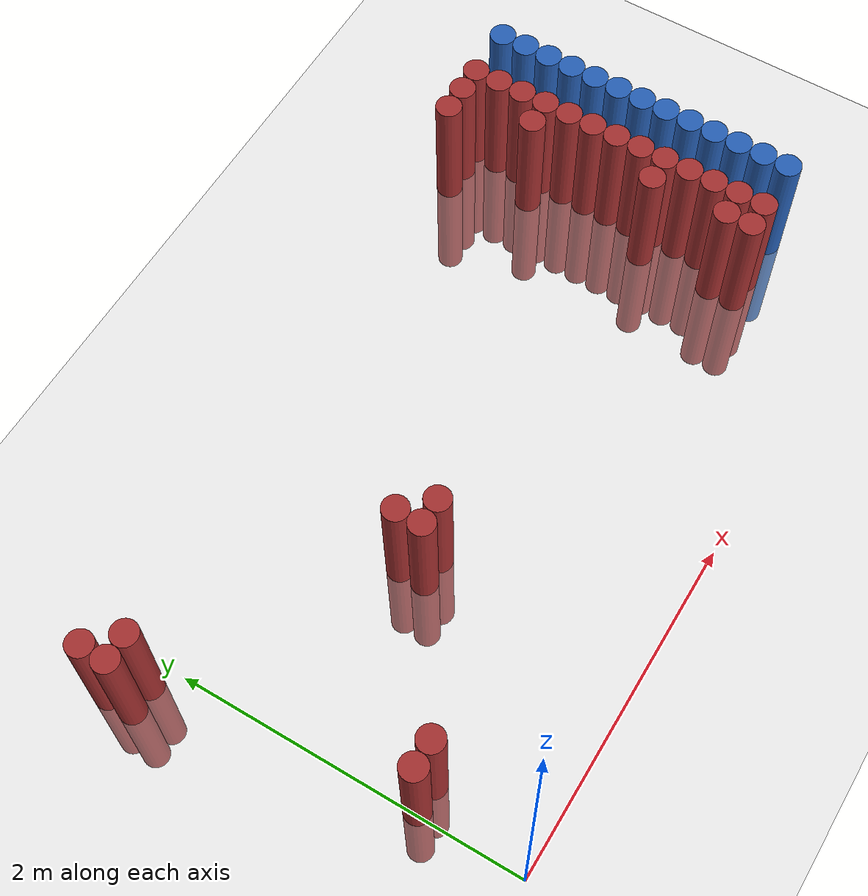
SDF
<sdf version="1.6">
 <world name="default">
  <model name="ground_plane">
   <static>1</static>
   <link name="link">
    <collision name="collision">
     <geometry><plane><normal>0 0 1</normal><size>100 100</size></plane></geometry>
     <surface><friction><ode><mu>100</mu><mu2>50</mu2></ode></friction></surface>
    </collision>
    <visual name="visual">
     <cast_shadows>0</cast_shadows>
     <geometry><plane><normal>0 0 1</normal><size>100 100</size></plane></geometry>
     <material>
      <script><uri>file://media/materials/scripts/gazebo.material</uri><name>Gazebo/Grey</name></script>
     </material>
    </visual>
   </link>
  </model>
  <model name="unit_cylinder_122">
   <static>1</static>
   <pose>3.925000 0.625000 0.000000 0.000000 0.000000 0.000000</pose>
   <link name="link">
    <inertial>
     <mass>1</mass>
     <inertia><ixx>0.145833</ixx><ixy>0</ixy><ixz>0</ixz><iyy>0.145833</iyy><iyz>0</iyz><izz>0.125</izz></inertia>
    </inertial>
    <collision name="collision">
     <geometry><cylinder><radius>0.075000</radius><length>1.5</length></cylinder></geometry>
    </collision>
    <visual name="visual">
     <geometry><cylinder><radius>0.075000</radius><length>1.5</length></cylinder></geometry>
     <material>
      <ambient>0.152000 0.379000 0.720000 1</ambient>
      <diffuse>0.152000 0.379000 0.720000 1</diffuse>
     </material>
     <material>
      <script><name>Gazebo/Grey</name><uri>file://media/materials/scripts/gazebo.material</uri></script>
     </material>
    </visual>
   </link>
  </model>
  <model name="unit_cylinder_124">
   <static>1</static>
   <pose>3.925000 0.775000 0.000000 0.000000 0.000000 0.000000</pose>
   <link name="link">
    <inertial>
     <mass>1</mass>
     <inertia><ixx>0.145833</ixx><ixy>0</ixy><ixz>0</ixz><iyy>0.145833</iyy><iyz>0</iyz><izz>0.125</izz></inertia>
    </inertial>
    <collision name="collision">
     <geometry><cylinder><radius>0.075000</radius><length>1.5</length></cylinder></geometry>
    </collision>
    <visual name="visual">
     <geometry><cylinder><radius>0.075000</radius><length>1.5</length></cylinder></geometry>
     <material>
      <ambient>0.152000 0.379000 0.720000 1</ambient>
      <diffuse>0.152000 0.379000 0.720000 1</diffuse>
     </material>
     <material>
      <script><name>Gazebo/Grey</name><uri>file://media/materials/scripts/gazebo.material</uri></script>
     </material>
    </visual>
   </link>
  </model>
  <model name="unit_cylinder_126">
   <static>1</static>
   <pose>3.925000 0.925000 0.000000 0.000000 0.000000 0.000000</pose>
   <link name="link">
    <inertial>
     <mass>1</mass>
     <inertia><ixx>0.145833</ixx><ixy>0</ixy><ixz>0</ixz><iyy>0.145833</iyy><iyz>0</iyz><izz>0.125</izz></inertia>
    </inertial>
    <collision name="collision">
     <geometry><cylinder><radius>0.075000</radius><length>1.5</length></cylinder></geometry>
    </collision>
    <visual name="visual">
     <geometry><cylinder><radius>0.075000</radius><length>1.5</length></cylinder></geometry>
     <material>
      <ambient>0.152000 0.379000 0.720000 1</ambient>
      <diffuse>0.152000 0.379000 0.720000 1</diffuse>
     </material>
     <material>
      <script><name>Gazebo/Grey</name><uri>file://media/materials/scripts/gazebo.material</uri></script>
     </material>
    </visual>
   </link>
  </model>
  <model name="unit_cylinder_128">
   <static>1</static>
   <pose>3.925000 1.075000 0.000000 0.000000 0.000000 0.000000</pose>
   <link name="link">
    <inertial>
     <mass>1</mass>
     <inertia><ixx>0.145833</ixx><ixy>0</ixy><ixz>0</ixz><iyy>0.145833</iyy><iyz>0</iyz><izz>0.125</izz></inertia>
    </inertial>
    <collision name="collision">
     <geometry><cylinder><radius>0.075000</radius><length>1.5</length></cylinder></geometry>
    </collision>
    <visual name="visual">
     <geometry><cylinder><radius>0.075000</radius><length>1.5</length></cylinder></geometry>
     <material>
      <ambient>0.152000 0.379000 0.720000 1</ambient>
      <diffuse>0.152000 0.379000 0.720000 1</diffuse>
     </material>
     <material>
      <script><name>Gazebo/Grey</name><uri>file://media/materials/scripts/gazebo.material</uri></script>
     </material>
    </visual>
   </link>
  </model>
  <model name="unit_cylinder_130">
   <static>1</static>
   <pose>3.925000 1.225000 0.000000 0.000000 0.000000 0.000000</pose>
   <link name="link">
    <inertial>
     <mass>1</mass>
     <inertia><ixx>0.145833</ixx><ixy>0</ixy><ixz>0</ixz><iyy>0.145833</iyy><iyz>0</iyz><izz>0.125</izz></inertia>
    </inertial>
    <collision name="collision">
     <geometry><cylinder><radius>0.075000</radius><length>1.5</length></cylinder></geometry>
    </collision>
    <visual name="visual">
     <geometry><cylinder><radius>0.075000</radius><length>1.5</length></cylinder></geometry>
     <material>
      <ambient>0.152000 0.379000 0.720000 1</ambient>
      <diffuse>0.152000 0.379000 0.720000 1</diffuse>
     </material>
     <material>
      <script><name>Gazebo/Grey</name><uri>file://media/materials/scripts/gazebo.material</uri></script>
     </material>
    </visual>
   </link>
  </model>
  <model name="unit_cylinder_132">
   <static>1</static>
   <pose>3.925000 1.375000 0.000000 0.000000 0.000000 0.000000</pose>
   <link name="link">
    <inertial>
     <mass>1</mass>
     <inertia><ixx>0.145833</ixx><ixy>0</ixy><ixz>0</ixz><iyy>0.145833</iyy><iyz>0</iyz><izz>0.125</izz></inertia>
    </inertial>
    <collision name="collision">
     <geometry><cylinder><radius>0.075000</radius><length>1.5</length></cylinder></geometry>
    </collision>
    <visual name="visual">
     <geometry><cylinder><radius>0.075000</radius><length>1.5</length></cylinder></geometry>
     <material>
      <ambient>0.152000 0.379000 0.720000 1</ambient>
      <diffuse>0.152000 0.379000 0.720000 1</diffuse>
     </material>
     <material>
      <script><name>Gazebo/Grey</name><uri>file://media/materials/scripts/gazebo.material</uri></script>
     </material>
    </visual>
   </link>
  </model>
  <model name="unit_cylinder_134">
   <static>1</static>
   <pose>3.925000 1.525000 0.000000 0.000000 0.000000 0.000000</pose>
   <link name="link">
    <inertial>
     <mass>1</mass>
     <inertia><ixx>0.145833</ixx><ixy>0</ixy><ixz>0</ixz><iyy>0.145833</iyy><iyz>0</iyz><izz>0.125</izz></inertia>
    </inertial>
    <collision name="collision">
     <geometry><cylinder><radius>0.075000</radius><length>1.5</length></cylinder></geometry>
    </collision>
    <visual name="visual">
     <geometry><cylinder><radius>0.075000</radius><length>1.5</length></cylinder></geometry>
     <material>
      <ambient>0.152000 0.379000 0.720000 1</ambient>
      <diffuse>0.152000 0.379000 0.720000 1</diffuse>
     </material>
     <material>
      <script><name>Gazebo/Grey</name><uri>file://media/materials/scripts/gazebo.material</uri></script>
     </material>
    </visual>
   </link>
  </model>
  <model name="unit_cylinder_136">
   <static>1</static>
   <pose>3.925000 1.675000 0.000000 0.000000 0.000000 0.000000</pose>
   <link name="link">
    <inertial>
     <mass>1</mass>
     <inertia><ixx>0.145833</ixx><ixy>0</ixy><ixz>0</ixz><iyy>0.145833</iyy><iyz>0</iyz><izz>0.125</izz></inertia>
    </inertial>
    <collision name="collision">
     <geometry><cylinder><radius>0.075000</radius><length>1.5</length></cylinder></geometry>
    </collision>
    <visual name="visual">
     <geometry><cylinder><radius>0.075000</radius><length>1.5</length></cylinder></geometry>
     <material>
      <ambient>0.152000 0.379000 0.720000 1</ambient>
      <diffuse>0.152000 0.379000 0.720000 1</diffuse>
     </material>
     <material>
      <script><name>Gazebo/Grey</name><uri>file://media/materials/scripts/gazebo.material</uri></script>
     </material>
    </visual>
   </link>
  </model>
  <model name="unit_cylinder_138">
   <static>1</static>
   <pose>3.925000 1.825000 0.000000 0.000000 0.000000 0.000000</pose>
   <link name="link">
    <inertial>
     <mass>1</mass>
     <inertia><ixx>0.145833</ixx><ixy>0</ixy><ixz>0</ixz><iyy>0.145833</iyy><iyz>0</iyz><izz>0.125</izz></inertia>
    </inertial>
    <collision name="collision">
     <geometry><cylinder><radius>0.075000</radius><length>1.5</length></cylinder></geometry>
    </collision>
    <visual name="visual">
     <geometry><cylinder><radius>0.075000</radius><length>1.5</length></cylinder></geometry>
     <material>
      <ambient>0.152000 0.379000 0.720000 1</ambient>
      <diffuse>0.152000 0.379000 0.720000 1</diffuse>
     </material>
     <material>
      <script><name>Gazebo/Grey</name><uri>file://media/materials/scripts/gazebo.material</uri></script>
     </material>
    </visual>
   </link>
  </model>
  <model name="unit_cylinder_140">
   <static>1</static>
   <pose>3.925000 1.975000 0.000000 0.000000 0.000000 0.000000</pose>
   <link name="link">
    <inertial>
     <mass>1</mass>
     <inertia><ixx>0.145833</ixx><ixy>0</ixy><ixz>0</ixz><iyy>0.145833</iyy><iyz>0</iyz><izz>0.125</izz></inertia>
    </inertial>
    <collision name="collision">
     <geometry><cylinder><radius>0.075000</radius><length>1.5</length></cylinder></geometry>
    </collision>
    <visual name="visual">
     <geometry><cylinder><radius>0.075000</radius><length>1.5</length></cylinder></geometry>
     <material>
      <ambient>0.152000 0.379000 0.720000 1</ambient>
      <diffuse>0.152000 0.379000 0.720000 1</diffuse>
     </material>
     <material>
      <script><name>Gazebo/Grey</name><uri>file://media/materials/scripts/gazebo.material</uri></script>
     </material>
    </visual>
   </link>
  </model>
  <model name="unit_cylinder_142">
   <static>1</static>
   <pose>3.925000 2.125000 0.000000 0.000000 0.000000 0.000000</pose>
   <link name="link">
    <inertial>
     <mass>1</mass>
     <inertia><ixx>0.145833</ixx><ixy>0</ixy><ixz>0</ixz><iyy>0.145833</iyy><iyz>0</iyz><izz>0.125</izz></inertia>
    </inertial>
    <collision name="collision">
     <geometry><cylinder><radius>0.075000</radius><length>1.5</length></cylinder></geometry>
    </collision>
    <visual name="visual">
     <geometry><cylinder><radius>0.075000</radius><length>1.5</length></cylinder></geometry>
     <material>
      <ambient>0.152000 0.379000 0.720000 1</ambient>
      <diffuse>0.152000 0.379000 0.720000 1</diffuse>
     </material>
     <material>
      <script><name>Gazebo/Grey</name><uri>file://media/materials/scripts/gazebo.material</uri></script>
     </material>
    </visual>
   </link>
  </model>
  <model name="unit_cylinder_144">
   <static>1</static>
   <pose>3.925000 2.275000 0.000000 0.000000 0.000000 0.000000</pose>
   <link name="link">
    <inertial>
     <mass>1</mass>
     <inertia><ixx>0.145833</ixx><ixy>0</ixy><ixz>0</ixz><iyy>0.145833</iyy><iyz>0</iyz><izz>0.125</izz></inertia>
    </inertial>
    <collision name="collision">
     <geometry><cylinder><radius>0.075000</radius><length>1.5</length></cylinder></geometry>
    </collision>
    <visual name="visual">
     <geometry><cylinder><radius>0.075000</radius><length>1.5</length></cylinder></geometry>
     <material>
      <ambient>0.152000 0.379000 0.720000 1</ambient>
      <diffuse>0.152000 0.379000 0.720000 1</diffuse>
     </material>
     <material>
      <script><name>Gazebo/Grey</name><uri>file://media/materials/scripts/gazebo.material</uri></script>
     </material>
    </visual>
   </link>
  </model>
  <model name="unit_cylinder_146">
   <static>1</static>
   <pose>3.925000 2.425000 0.000000 0.000000 0.000000 0.000000</pose>
   <link name="link">
    <inertial>
     <mass>1</mass>
     <inertia><ixx>0.145833</ixx><ixy>0</ixy><ixz>0</ixz><iyy>0.145833</iyy><iyz>0</iyz><izz>0.125</izz></inertia>
    </inertial>
    <collision name="collision">
     <geometry><cylinder><radius>0.075000</radius><length>1.5</length></cylinder></geometry>
    </collision>
    <visual name="visual">
     <geometry><cylinder><radius>0.075000</radius><length>1.5</length></cylinder></geometry>
     <material>
      <ambient>0.152000 0.379000 0.720000 1</ambient>
      <diffuse>0.152000 0.379000 0.720000 1</diffuse>
     </material>
     <material>
      <script><name>Gazebo/Grey</name><uri>file://media/materials/scripts/gazebo.material</uri></script>
     </material>
    </visual>
   </link>
  </model>
  <model name="unit_cylinder_403">
   <static>1</static>
   <pose>-0.275000 2.125000 0.000000 0.000000 0.000000 0.000000</pose>
   <link name="link">
    <inertial>
     <mass>1</mass>
     <inertia><ixx>0.145833</ixx><ixy>0</ixy><ixz>0</ixz><iyy>0.145833</iyy><iyz>0</iyz><izz>0.125</izz></inertia>
    </inertial>
    <collision name="collision">
     <geometry><cylinder><radius>0.075000</radius><length>1.5</length></cylinder></geometry>
    </collision>
    <visual name="visual">
     <geometry><cylinder><radius>0.075000</radius><length>1.5</length></cylinder></geometry>
     <material>
      <ambient>0.648000 0.192000 0.192000 1</ambient>
      <diffuse>0.648000 0.192000 0.192000 1</diffuse>
     </material>
     <material>
      <script><name>Gazebo/Grey</name><uri>file://media/materials/scripts/gazebo.material</uri></script>
     </material>
    </visual>
   </link>
  </model>
  <model name="unit_cylinder_404">
   <static>1</static>
   <pose>-0.275000 2.275000 0.000000 0.000000 0.000000 0.000000</pose>
   <link name="link">
    <inertial>
     <mass>1</mass>
     <inertia><ixx>0.145833</ixx><ixy>0</ixy><ixz>0</ixz><iyy>0.145833</iyy><iyz>0</iyz><izz>0.125</izz></inertia>
    </inertial>
    <collision name="collision">
     <geometry><cylinder><radius>0.075000</radius><length>1.5</length></cylinder></geometry>
    </collision>
    <visual name="visual">
     <geometry><cylinder><radius>0.075000</radius><length>1.5</length></cylinder></geometry>
     <material>
      <ambient>0.648000 0.192000 0.192000 1</ambient>
      <diffuse>0.648000 0.192000 0.192000 1</diffuse>
     </material>
     <material>
      <script><name>Gazebo/Grey</name><uri>file://media/materials/scripts/gazebo.material</uri></script>
     </material>
    </visual>
   </link>
  </model>
  <model name="unit_cylinder_407">
   <static>1</static>
   <pose>-0.125000 2.125000 0.000000 0.000000 0.000000 0.000000</pose>
   <link name="link">
    <inertial>
     <mass>1</mass>
     <inertia><ixx>0.145833</ixx><ixy>0</ixy><ixz>0</ixz><iyy>0.145833</iyy><iyz>0</iyz><izz>0.125</izz></inertia>
    </inertial>
    <collision name="collision">
     <geometry><cylinder><radius>0.075000</radius><length>1.5</length></cylinder></geometry>
    </collision>
    <visual name="visual">
     <geometry><cylinder><radius>0.075000</radius><length>1.5</length></cylinder></geometry>
     <material>
      <ambient>0.648000 0.192000 0.192000 1</ambient>
      <diffuse>0.648000 0.192000 0.192000 1</diffuse>
     </material>
     <material>
      <script><name>Gazebo/Grey</name><uri>file://media/materials/scripts/gazebo.material</uri></script>
     </material>
    </visual>
   </link>
  </model>
  <model name="unit_cylinder_409">
   <static>1</static>
   <pose>0.025000 0.625000 0.000000 0.000000 0.000000 0.000000</pose>
   <link name="link">
    <inertial>
     <mass>1</mass>
     <inertia><ixx>0.145833</ixx><ixy>0</ixy><ixz>0</ixz><iyy>0.145833</iyy><iyz>0</iyz><izz>0.125</izz></inertia>
    </inertial>
    <collision name="collision">
     <geometry><cylinder><radius>0.075000</radius><length>1.5</length></cylinder></geometry>
    </collision>
    <visual name="visual">
     <geometry><cylinder><radius>0.075000</radius><length>1.5</length></cylinder></geometry>
     <material>
      <ambient>0.648000 0.192000 0.192000 1</ambient>
      <diffuse>0.648000 0.192000 0.192000 1</diffuse>
     </material>
     <material>
      <script><name>Gazebo/Grey</name><uri>file://media/materials/scripts/gazebo.material</uri></script>
     </material>
    </visual>
   </link>
  </model>
  <model name="unit_cylinder_412">
   <static>1</static>
   <pose>0.175000 0.625000 0.000000 0.000000 0.000000 0.000000</pose>
   <link name="link">
    <inertial>
     <mass>1</mass>
     <inertia><ixx>0.145833</ixx><ixy>0</ixy><ixz>0</ixz><iyy>0.145833</iyy><iyz>0</iyz><izz>0.125</izz></inertia>
    </inertial>
    <collision name="collision">
     <geometry><cylinder><radius>0.075000</radius><length>1.5</length></cylinder></geometry>
    </collision>
    <visual name="visual">
     <geometry><cylinder><radius>0.075000</radius><length>1.5</length></cylinder></geometry>
     <material>
      <ambient>0.648000 0.192000 0.192000 1</ambient>
      <diffuse>0.648000 0.192000 0.192000 1</diffuse>
     </material>
     <material>
      <script><name>Gazebo/Grey</name><uri>file://media/materials/scripts/gazebo.material</uri></script>
     </material>
    </visual>
   </link>
  </model>
  <model name="unit_cylinder_421">
   <static>1</static>
   <pose>1.075000 1.225000 0.000000 0.000000 0.000000 0.000000</pose>
   <link name="link">
    <inertial>
     <mass>1</mass>
     <inertia><ixx>0.145833</ixx><ixy>0</ixy><ixz>0</ixz><iyy>0.145833</iyy><iyz>0</iyz><izz>0.125</izz></inertia>
    </inertial>
    <collision name="collision">
     <geometry><cylinder><radius>0.075000</radius><length>1.5</length></cylinder></geometry>
    </collision>
    <visual name="visual">
     <geometry><cylinder><radius>0.075000</radius><length>1.5</length></cylinder></geometry>
     <material>
      <ambient>0.648000 0.192000 0.192000 1</ambient>
      <diffuse>0.648000 0.192000 0.192000 1</diffuse>
     </material>
     <material>
      <script><name>Gazebo/Grey</name><uri>file://media/materials/scripts/gazebo.material</uri></script>
     </material>
    </visual>
   </link>
  </model>
  <model name="unit_cylinder_422">
   <static>1</static>
   <pose>1.075000 1.375000 0.000000 0.000000 0.000000 0.000000</pose>
   <link name="link">
    <inertial>
     <mass>1</mass>
     <inertia><ixx>0.145833</ixx><ixy>0</ixy><ixz>0</ixz><iyy>0.145833</iyy><iyz>0</iyz><izz>0.125</izz></inertia>
    </inertial>
    <collision name="collision">
     <geometry><cylinder><radius>0.075000</radius><length>1.5</length></cylinder></geometry>
    </collision>
    <visual name="visual">
     <geometry><cylinder><radius>0.075000</radius><length>1.5</length></cylinder></geometry>
     <material>
      <ambient>0.648000 0.192000 0.192000 1</ambient>
      <diffuse>0.648000 0.192000 0.192000 1</diffuse>
     </material>
     <material>
      <script><name>Gazebo/Grey</name><uri>file://media/materials/scripts/gazebo.material</uri></script>
     </material>
    </visual>
   </link>
  </model>
  <model name="unit_cylinder_427">
   <static>1</static>
   <pose>1.225000 1.225000 0.000000 0.000000 0.000000 0.000000</pose>
   <link name="link">
    <inertial>
     <mass>1</mass>
     <inertia><ixx>0.145833</ixx><ixy>0</ixy><ixz>0</ixz><iyy>0.145833</iyy><iyz>0</iyz><izz>0.125</izz></inertia>
    </inertial>
    <collision name="collision">
     <geometry><cylinder><radius>0.075000</radius><length>1.5</length></cylinder></geometry>
    </collision>
    <visual name="visual">
     <geometry><cylinder><radius>0.075000</radius><length>1.5</length></cylinder></geometry>
     <material>
      <ambient>0.648000 0.192000 0.192000 1</ambient>
      <diffuse>0.648000 0.192000 0.192000 1</diffuse>
     </material>
     <material>
      <script><name>Gazebo/Grey</name><uri>file://media/materials/scripts/gazebo.material</uri></script>
     </material>
    </visual>
   </link>
  </model>
  <model name="unit_cylinder_469">
   <static>1</static>
   <pose>3.325000 2.425000 0.000000 0.000000 0.000000 0.000000</pose>
   <link name="link">
    <inertial>
     <mass>1</mass>
     <inertia><ixx>0.145833</ixx><ixy>0</ixy><ixz>0</ixz><iyy>0.145833</iyy><iyz>0</iyz><izz>0.125</izz></inertia>
    </inertial>
    <collision name="collision">
     <geometry><cylinder><radius>0.075000</radius><length>1.5</length></cylinder></geometry>
    </collision>
    <visual name="visual">
     <geometry><cylinder><radius>0.075000</radius><length>1.5</length></cylinder></geometry>
     <material>
      <ambient>0.648000 0.192000 0.192000 1</ambient>
      <diffuse>0.648000 0.192000 0.192000 1</diffuse>
     </material>
     <material>
      <script><name>Gazebo/Grey</name><uri>file://media/materials/scripts/gazebo.material</uri></script>
     </material>
    </visual>
   </link>
  </model>
  <model name="unit_cylinder_476">
   <static>1</static>
   <pose>3.475000 0.625000 0.000000 0.000000 0.000000 0.000000</pose>
   <link name="link">
    <inertial>
     <mass>1</mass>
     <inertia><ixx>0.145833</ixx><ixy>0</ixy><ixz>0</ixz><iyy>0.145833</iyy><iyz>0</iyz><izz>0.125</izz></inertia>
    </inertial>
    <collision name="collision">
     <geometry><cylinder><radius>0.075000</radius><length>1.5</length></cylinder></geometry>
    </collision>
    <visual name="visual">
     <geometry><cylinder><radius>0.075000</radius><length>1.5</length></cylinder></geometry>
     <material>
      <ambient>0.648000 0.192000 0.192000 1</ambient>
      <diffuse>0.648000 0.192000 0.192000 1</diffuse>
     </material>
     <material>
      <script><name>Gazebo/Grey</name><uri>file://media/materials/scripts/gazebo.material</uri></script>
     </material>
    </visual>
   </link>
  </model>
  <model name="unit_cylinder_477">
   <static>1</static>
   <pose>3.475000 0.775000 0.000000 0.000000 0.000000 0.000000</pose>
   <link name="link">
    <inertial>
     <mass>1</mass>
     <inertia><ixx>0.145833</ixx><ixy>0</ixy><ixz>0</ixz><iyy>0.145833</iyy><iyz>0</iyz><izz>0.125</izz></inertia>
    </inertial>
    <collision name="collision">
     <geometry><cylinder><radius>0.075000</radius><length>1.5</length></cylinder></geometry>
    </collision>
    <visual name="visual">
     <geometry><cylinder><radius>0.075000</radius><length>1.5</length></cylinder></geometry>
     <material>
      <ambient>0.648000 0.192000 0.192000 1</ambient>
      <diffuse>0.648000 0.192000 0.192000 1</diffuse>
     </material>
     <material>
      <script><name>Gazebo/Grey</name><uri>file://media/materials/scripts/gazebo.material</uri></script>
     </material>
    </visual>
   </link>
  </model>
  <model name="unit_cylinder_478">
   <static>1</static>
   <pose>3.475000 1.225000 0.000000 0.000000 0.000000 0.000000</pose>
   <link name="link">
    <inertial>
     <mass>1</mass>
     <inertia><ixx>0.145833</ixx><ixy>0</ixy><ixz>0</ixz><iyy>0.145833</iyy><iyz>0</iyz><izz>0.125</izz></inertia>
    </inertial>
    <collision name="collision">
     <geometry><cylinder><radius>0.075000</radius><length>1.5</length></cylinder></geometry>
    </collision>
    <visual name="visual">
     <geometry><cylinder><radius>0.075000</radius><length>1.5</length></cylinder></geometry>
     <material>
      <ambient>0.648000 0.192000 0.192000 1</ambient>
      <diffuse>0.648000 0.192000 0.192000 1</diffuse>
     </material>
     <material>
      <script><name>Gazebo/Grey</name><uri>file://media/materials/scripts/gazebo.material</uri></script>
     </material>
    </visual>
   </link>
  </model>
  <model name="unit_cylinder_479">
   <static>1</static>
   <pose>3.475000 1.975000 0.000000 0.000000 0.000000 0.000000</pose>
   <link name="link">
    <inertial>
     <mass>1</mass>
     <inertia><ixx>0.145833</ixx><ixy>0</ixy><ixz>0</ixz><iyy>0.145833</iyy><iyz>0</iyz><izz>0.125</izz></inertia>
    </inertial>
    <collision name="collision">
     <geometry><cylinder><radius>0.075000</radius><length>1.5</length></cylinder></geometry>
    </collision>
    <visual name="visual">
     <geometry><cylinder><radius>0.075000</radius><length>1.5</length></cylinder></geometry>
     <material>
      <ambient>0.648000 0.192000 0.192000 1</ambient>
      <diffuse>0.648000 0.192000 0.192000 1</diffuse>
     </material>
     <material>
      <script><name>Gazebo/Grey</name><uri>file://media/materials/scripts/gazebo.material</uri></script>
     </material>
    </visual>
   </link>
  </model>
  <model name="unit_cylinder_480">
   <static>1</static>
   <pose>3.475000 2.425000 0.000000 0.000000 0.000000 0.000000</pose>
   <link name="link">
    <inertial>
     <mass>1</mass>
     <inertia><ixx>0.145833</ixx><ixy>0</ixy><ixz>0</ixz><iyy>0.145833</iyy><iyz>0</iyz><izz>0.125</izz></inertia>
    </inertial>
    <collision name="collision">
     <geometry><cylinder><radius>0.075000</radius><length>1.5</length></cylinder></geometry>
    </collision>
    <visual name="visual">
     <geometry><cylinder><radius>0.075000</radius><length>1.5</length></cylinder></geometry>
     <material>
      <ambient>0.648000 0.192000 0.192000 1</ambient>
      <diffuse>0.648000 0.192000 0.192000 1</diffuse>
     </material>
     <material>
      <script><name>Gazebo/Grey</name><uri>file://media/materials/scripts/gazebo.material</uri></script>
     </material>
    </visual>
   </link>
  </model>
  <model name="unit_cylinder_487">
   <static>1</static>
   <pose>3.625000 0.625000 0.000000 0.000000 0.000000 0.000000</pose>
   <link name="link">
    <inertial>
     <mass>1</mass>
     <inertia><ixx>0.145833</ixx><ixy>0</ixy><ixz>0</ixz><iyy>0.145833</iyy><iyz>0</iyz><izz>0.125</izz></inertia>
    </inertial>
    <collision name="collision">
     <geometry><cylinder><radius>0.075000</radius><length>1.5</length></cylinder></geometry>
    </collision>
    <visual name="visual">
     <geometry><cylinder><radius>0.075000</radius><length>1.5</length></cylinder></geometry>
     <material>
      <ambient>0.648000 0.192000 0.192000 1</ambient>
      <diffuse>0.648000 0.192000 0.192000 1</diffuse>
     </material>
     <material>
      <script><name>Gazebo/Grey</name><uri>file://media/materials/scripts/gazebo.material</uri></script>
     </material>
    </visual>
   </link>
  </model>
  <model name="unit_cylinder_488">
   <static>1</static>
   <pose>3.625000 0.775000 0.000000 0.000000 0.000000 0.000000</pose>
   <link name="link">
    <inertial>
     <mass>1</mass>
     <inertia><ixx>0.145833</ixx><ixy>0</ixy><ixz>0</ixz><iyy>0.145833</iyy><iyz>0</iyz><izz>0.125</izz></inertia>
    </inertial>
    <collision name="collision">
     <geometry><cylinder><radius>0.075000</radius><length>1.5</length></cylinder></geometry>
    </collision>
    <visual name="visual">
     <geometry><cylinder><radius>0.075000</radius><length>1.5</length></cylinder></geometry>
     <material>
      <ambient>0.648000 0.192000 0.192000 1</ambient>
      <diffuse>0.648000 0.192000 0.192000 1</diffuse>
     </material>
     <material>
      <script><name>Gazebo/Grey</name><uri>file://media/materials/scripts/gazebo.material</uri></script>
     </material>
    </visual>
   </link>
  </model>
  <model name="unit_cylinder_489">
   <static>1</static>
   <pose>3.625000 0.925000 0.000000 0.000000 0.000000 0.000000</pose>
   <link name="link">
    <inertial>
     <mass>1</mass>
     <inertia><ixx>0.145833</ixx><ixy>0</ixy><ixz>0</ixz><iyy>0.145833</iyy><iyz>0</iyz><izz>0.125</izz></inertia>
    </inertial>
    <collision name="collision">
     <geometry><cylinder><radius>0.075000</radius><length>1.5</length></cylinder></geometry>
    </collision>
    <visual name="visual">
     <geometry><cylinder><radius>0.075000</radius><length>1.5</length></cylinder></geometry>
     <material>
      <ambient>0.648000 0.192000 0.192000 1</ambient>
      <diffuse>0.648000 0.192000 0.192000 1</diffuse>
     </material>
     <material>
      <script><name>Gazebo/Grey</name><uri>file://media/materials/scripts/gazebo.material</uri></script>
     </material>
    </visual>
   </link>
  </model>
  <model name="unit_cylinder_490">
   <static>1</static>
   <pose>3.625000 1.075000 0.000000 0.000000 0.000000 0.000000</pose>
   <link name="link">
    <inertial>
     <mass>1</mass>
     <inertia><ixx>0.145833</ixx><ixy>0</ixy><ixz>0</ixz><iyy>0.145833</iyy><iyz>0</iyz><izz>0.125</izz></inertia>
    </inertial>
    <collision name="collision">
     <geometry><cylinder><radius>0.075000</radius><length>1.5</length></cylinder></geometry>
    </collision>
    <visual name="visual">
     <geometry><cylinder><radius>0.075000</radius><length>1.5</length></cylinder></geometry>
     <material>
      <ambient>0.648000 0.192000 0.192000 1</ambient>
      <diffuse>0.648000 0.192000 0.192000 1</diffuse>
     </material>
     <material>
      <script><name>Gazebo/Grey</name><uri>file://media/materials/scripts/gazebo.material</uri></script>
     </material>
    </visual>
   </link>
  </model>
  <model name="unit_cylinder_491">
   <static>1</static>
   <pose>3.625000 1.225000 0.000000 0.000000 0.000000 0.000000</pose>
   <link name="link">
    <inertial>
     <mass>1</mass>
     <inertia><ixx>0.145833</ixx><ixy>0</ixy><ixz>0</ixz><iyy>0.145833</iyy><iyz>0</iyz><izz>0.125</izz></inertia>
    </inertial>
    <collision name="collision">
     <geometry><cylinder><radius>0.075000</radius><length>1.5</length></cylinder></geometry>
    </collision>
    <visual name="visual">
     <geometry><cylinder><radius>0.075000</radius><length>1.5</length></cylinder></geometry>
     <material>
      <ambient>0.648000 0.192000 0.192000 1</ambient>
      <diffuse>0.648000 0.192000 0.192000 1</diffuse>
     </material>
     <material>
      <script><name>Gazebo/Grey</name><uri>file://media/materials/scripts/gazebo.material</uri></script>
     </material>
    </visual>
   </link>
  </model>
  <model name="unit_cylinder_492">
   <static>1</static>
   <pose>3.625000 1.375000 0.000000 0.000000 0.000000 0.000000</pose>
   <link name="link">
    <inertial>
     <mass>1</mass>
     <inertia><ixx>0.145833</ixx><ixy>0</ixy><ixz>0</ixz><iyy>0.145833</iyy><iyz>0</iyz><izz>0.125</izz></inertia>
    </inertial>
    <collision name="collision">
     <geometry><cylinder><radius>0.075000</radius><length>1.5</length></cylinder></geometry>
    </collision>
    <visual name="visual">
     <geometry><cylinder><radius>0.075000</radius><length>1.5</length></cylinder></geometry>
     <material>
      <ambient>0.648000 0.192000 0.192000 1</ambient>
      <diffuse>0.648000 0.192000 0.192000 1</diffuse>
     </material>
     <material>
      <script><name>Gazebo/Grey</name><uri>file://media/materials/scripts/gazebo.material</uri></script>
     </material>
    </visual>
   </link>
  </model>
  <model name="unit_cylinder_493">
   <static>1</static>
   <pose>3.625000 1.525000 0.000000 0.000000 0.000000 0.000000</pose>
   <link name="link">
    <inertial>
     <mass>1</mass>
     <inertia><ixx>0.145833</ixx><ixy>0</ixy><ixz>0</ixz><iyy>0.145833</iyy><iyz>0</iyz><izz>0.125</izz></inertia>
    </inertial>
    <collision name="collision">
     <geometry><cylinder><radius>0.075000</radius><length>1.5</length></cylinder></geometry>
    </collision>
    <visual name="visual">
     <geometry><cylinder><radius>0.075000</radius><length>1.5</length></cylinder></geometry>
     <material>
      <ambient>0.648000 0.192000 0.192000 1</ambient>
      <diffuse>0.648000 0.192000 0.192000 1</diffuse>
     </material>
     <material>
      <script><name>Gazebo/Grey</name><uri>file://media/materials/scripts/gazebo.material</uri></script>
     </material>
    </visual>
   </link>
  </model>
  <model name="unit_cylinder_494">
   <static>1</static>
   <pose>3.625000 1.675000 0.000000 0.000000 0.000000 0.000000</pose>
   <link name="link">
    <inertial>
     <mass>1</mass>
     <inertia><ixx>0.145833</ixx><ixy>0</ixy><ixz>0</ixz><iyy>0.145833</iyy><iyz>0</iyz><izz>0.125</izz></inertia>
    </inertial>
    <collision name="collision">
     <geometry><cylinder><radius>0.075000</radius><length>1.5</length></cylinder></geometry>
    </collision>
    <visual name="visual">
     <geometry><cylinder><radius>0.075000</radius><length>1.5</length></cylinder></geometry>
     <material>
      <ambient>0.648000 0.192000 0.192000 1</ambient>
      <diffuse>0.648000 0.192000 0.192000 1</diffuse>
     </material>
     <material>
      <script><name>Gazebo/Grey</name><uri>file://media/materials/scripts/gazebo.material</uri></script>
     </material>
    </visual>
   </link>
  </model>
  <model name="unit_cylinder_495">
   <static>1</static>
   <pose>3.625000 1.825000 0.000000 0.000000 0.000000 0.000000</pose>
   <link name="link">
    <inertial>
     <mass>1</mass>
     <inertia><ixx>0.145833</ixx><ixy>0</ixy><ixz>0</ixz><iyy>0.145833</iyy><iyz>0</iyz><izz>0.125</izz></inertia>
    </inertial>
    <collision name="collision">
     <geometry><cylinder><radius>0.075000</radius><length>1.5</length></cylinder></geometry>
    </collision>
    <visual name="visual">
     <geometry><cylinder><radius>0.075000</radius><length>1.5</length></cylinder></geometry>
     <material>
      <ambient>0.648000 0.192000 0.192000 1</ambient>
      <diffuse>0.648000 0.192000 0.192000 1</diffuse>
     </material>
     <material>
      <script><name>Gazebo/Grey</name><uri>file://media/materials/scripts/gazebo.material</uri></script>
     </material>
    </visual>
   </link>
  </model>
  <model name="unit_cylinder_496">
   <static>1</static>
   <pose>3.625000 1.975000 0.000000 0.000000 0.000000 0.000000</pose>
   <link name="link">
    <inertial>
     <mass>1</mass>
     <inertia><ixx>0.145833</ixx><ixy>0</ixy><ixz>0</ixz><iyy>0.145833</iyy><iyz>0</iyz><izz>0.125</izz></inertia>
    </inertial>
    <collision name="collision">
     <geometry><cylinder><radius>0.075000</radius><length>1.5</length></cylinder></geometry>
    </collision>
    <visual name="visual">
     <geometry><cylinder><radius>0.075000</radius><length>1.5</length></cylinder></geometry>
     <material>
      <ambient>0.648000 0.192000 0.192000 1</ambient>
      <diffuse>0.648000 0.192000 0.192000 1</diffuse>
     </material>
     <material>
      <script><name>Gazebo/Grey</name><uri>file://media/materials/scripts/gazebo.material</uri></script>
     </material>
    </visual>
   </link>
  </model>
  <model name="unit_cylinder_497">
   <static>1</static>
   <pose>3.625000 2.125000 0.000000 0.000000 0.000000 0.000000</pose>
   <link name="link">
    <inertial>
     <mass>1</mass>
     <inertia><ixx>0.145833</ixx><ixy>0</ixy><ixz>0</ixz><iyy>0.145833</iyy><iyz>0</iyz><izz>0.125</izz></inertia>
    </inertial>
    <collision name="collision">
     <geometry><cylinder><radius>0.075000</radius><length>1.5</length></cylinder></geometry>
    </collision>
    <visual name="visual">
     <geometry><cylinder><radius>0.075000</radius><length>1.5</length></cylinder></geometry>
     <material>
      <ambient>0.648000 0.192000 0.192000 1</ambient>
      <diffuse>0.648000 0.192000 0.192000 1</diffuse>
     </material>
     <material>
      <script><name>Gazebo/Grey</name><uri>file://media/materials/scripts/gazebo.material</uri></script>
     </material>
    </visual>
   </link>
  </model>
  <model name="unit_cylinder_498">
   <static>1</static>
   <pose>3.625000 2.275000 0.000000 0.000000 0.000000 0.000000</pose>
   <link name="link">
    <inertial>
     <mass>1</mass>
     <inertia><ixx>0.145833</ixx><ixy>0</ixy><ixz>0</ixz><iyy>0.145833</iyy><iyz>0</iyz><izz>0.125</izz></inertia>
    </inertial>
    <collision name="collision">
     <geometry><cylinder><radius>0.075000</radius><length>1.5</length></cylinder></geometry>
    </collision>
    <visual name="visual">
     <geometry><cylinder><radius>0.075000</radius><length>1.5</length></cylinder></geometry>
     <material>
      <ambient>0.648000 0.192000 0.192000 1</ambient>
      <diffuse>0.648000 0.192000 0.192000 1</diffuse>
     </material>
     <material>
      <script><name>Gazebo/Grey</name><uri>file://media/materials/scripts/gazebo.material</uri></script>
     </material>
    </visual>
   </link>
  </model>
  <model name="unit_cylinder_499">
   <static>1</static>
   <pose>3.625000 2.425000 0.000000 0.000000 0.000000 0.000000</pose>
   <link name="link">
    <inertial>
     <mass>1</mass>
     <inertia><ixx>0.145833</ixx><ixy>0</ixy><ixz>0</ixz><iyy>0.145833</iyy><iyz>0</iyz><izz>0.125</izz></inertia>
    </inertial>
    <collision name="collision">
     <geometry><cylinder><radius>0.075000</radius><length>1.5</length></cylinder></geometry>
    </collision>
    <visual name="visual">
     <geometry><cylinder><radius>0.075000</radius><length>1.5</length></cylinder></geometry>
     <material>
      <ambient>0.648000 0.192000 0.192000 1</ambient>
      <diffuse>0.648000 0.192000 0.192000 1</diffuse>
     </material>
     <material>
      <script><name>Gazebo/Grey</name><uri>file://media/materials/scripts/gazebo.material</uri></script>
     </material>
    </visual>
   </link>
  </model>
  <model name="unit_cylinder_533">
   <static>1</static>
   <pose>3.925000 0.625000 0.000000 0.000000 0.000000 0.000000</pose>
   <link name="link">
    <inertial>
     <mass>1</mass>
     <inertia><ixx>0.145833</ixx><ixy>0</ixy><ixz>0</ixz><iyy>0.145833</iyy><iyz>0</iyz><izz>0.125</izz></inertia>
    </inertial>
    <collision name="collision">
     <geometry><cylinder><radius>0.075000</radius><length>1.5</length></cylinder></geometry>
    </collision>
    <visual name="visual">
     <geometry><cylinder><radius>0.075000</radius><length>1.5</length></cylinder></geometry>
     <material>
      <ambient>0.152000 0.379000 0.720000 1</ambient>
      <diffuse>0.152000 0.379000 0.720000 1</diffuse>
     </material>
     <material>
      <script><name>Gazebo/Grey</name><uri>file://media/materials/scripts/gazebo.material</uri></script>
     </material>
    </visual>
   </link>
  </model>
  <model name="unit_cylinder_534">
   <static>1</static>
   <pose>3.925000 0.775000 0.000000 0.000000 0.000000 0.000000</pose>
   <link name="link">
    <inertial>
     <mass>1</mass>
     <inertia><ixx>0.145833</ixx><ixy>0</ixy><ixz>0</ixz><iyy>0.145833</iyy><iyz>0</iyz><izz>0.125</izz></inertia>
    </inertial>
    <collision name="collision">
     <geometry><cylinder><radius>0.075000</radius><length>1.5</length></cylinder></geometry>
    </collision>
    <visual name="visual">
     <geometry><cylinder><radius>0.075000</radius><length>1.5</length></cylinder></geometry>
     <material>
      <ambient>0.152000 0.379000 0.720000 1</ambient>
      <diffuse>0.152000 0.379000 0.720000 1</diffuse>
     </material>
     <material>
      <script><name>Gazebo/Grey</name><uri>file://media/materials/scripts/gazebo.material</uri></script>
     </material>
    </visual>
   </link>
  </model>
  <model name="unit_cylinder_535">
   <static>1</static>
   <pose>3.925000 0.925000 0.000000 0.000000 0.000000 0.000000</pose>
   <link name="link">
    <inertial>
     <mass>1</mass>
     <inertia><ixx>0.145833</ixx><ixy>0</ixy><ixz>0</ixz><iyy>0.145833</iyy><iyz>0</iyz><izz>0.125</izz></inertia>
    </inertial>
    <collision name="collision">
     <geometry><cylinder><radius>0.075000</radius><length>1.5</length></cylinder></geometry>
    </collision>
    <visual name="visual">
     <geometry><cylinder><radius>0.075000</radius><length>1.5</length></cylinder></geometry>
     <material>
      <ambient>0.152000 0.379000 0.720000 1</ambient>
      <diffuse>0.152000 0.379000 0.720000 1</diffuse>
     </material>
     <material>
      <script><name>Gazebo/Grey</name><uri>file://media/materials/scripts/gazebo.material</uri></script>
     </material>
    </visual>
   </link>
  </model>
  <model name="unit_cylinder_536">
   <static>1</static>
   <pose>3.925000 1.075000 0.000000 0.000000 0.000000 0.000000</pose>
   <link name="link">
    <inertial>
     <mass>1</mass>
     <inertia><ixx>0.145833</ixx><ixy>0</ixy><ixz>0</ixz><iyy>0.145833</iyy><iyz>0</iyz><izz>0.125</izz></inertia>
    </inertial>
    <collision name="collision">
     <geometry><cylinder><radius>0.075000</radius><length>1.5</length></cylinder></geometry>
    </collision>
    <visual name="visual">
     <geometry><cylinder><radius>0.075000</radius><length>1.5</length></cylinder></geometry>
     <material>
      <ambient>0.152000 0.379000 0.720000 1</ambient>
      <diffuse>0.152000 0.379000 0.720000 1</diffuse>
     </material>
     <material>
      <script><name>Gazebo/Grey</name><uri>file://media/materials/scripts/gazebo.material</uri></script>
     </material>
    </visual>
   </link>
  </model>
  <model name="unit_cylinder_537">
   <static>1</static>
   <pose>3.925000 1.225000 0.000000 0.000000 0.000000 0.000000</pose>
   <link name="link">
    <inertial>
     <mass>1</mass>
     <inertia><ixx>0.145833</ixx><ixy>0</ixy><ixz>0</ixz><iyy>0.145833</iyy><iyz>0</iyz><izz>0.125</izz></inertia>
    </inertial>
    <collision name="collision">
     <geometry><cylinder><radius>0.075000</radius><length>1.5</length></cylinder></geometry>
    </collision>
    <visual name="visual">
     <geometry><cylinder><radius>0.075000</radius><length>1.5</length></cylinder></geometry>
     <material>
      <ambient>0.152000 0.379000 0.720000 1</ambient>
      <diffuse>0.152000 0.379000 0.720000 1</diffuse>
     </material>
     <material>
      <script><name>Gazebo/Grey</name><uri>file://media/materials/scripts/gazebo.material</uri></script>
     </material>
    </visual>
   </link>
  </model>
  <model name="unit_cylinder_538">
   <static>1</static>
   <pose>3.925000 1.375000 0.000000 0.000000 0.000000 0.000000</pose>
   <link name="link">
    <inertial>
     <mass>1</mass>
     <inertia><ixx>0.145833</ixx><ixy>0</ixy><ixz>0</ixz><iyy>0.145833</iyy><iyz>0</iyz><izz>0.125</izz></inertia>
    </inertial>
    <collision name="collision">
     <geometry><cylinder><radius>0.075000</radius><length>1.5</length></cylinder></geometry>
    </collision>
    <visual name="visual">
     <geometry><cylinder><radius>0.075000</radius><length>1.5</length></cylinder></geometry>
     <material>
      <ambient>0.152000 0.379000 0.720000 1</ambient>
      <diffuse>0.152000 0.379000 0.720000 1</diffuse>
     </material>
     <material>
      <script><name>Gazebo/Grey</name><uri>file://media/materials/scripts/gazebo.material</uri></script>
     </material>
    </visual>
   </link>
  </model>
  <model name="unit_cylinder_539">
   <static>1</static>
   <pose>3.925000 1.525000 0.000000 0.000000 0.000000 0.000000</pose>
   <link name="link">
    <inertial>
     <mass>1</mass>
     <inertia><ixx>0.145833</ixx><ixy>0</ixy><ixz>0</ixz><iyy>0.145833</iyy><iyz>0</iyz><izz>0.125</izz></inertia>
    </inertial>
    <collision name="collision">
     <geometry><cylinder><radius>0.075000</radius><length>1.5</length></cylinder></geometry>
    </collision>
    <visual name="visual">
     <geometry><cylinder><radius>0.075000</radius><length>1.5</length></cylinder></geometry>
     <material>
      <ambient>0.152000 0.379000 0.720000 1</ambient>
      <diffuse>0.152000 0.379000 0.720000 1</diffuse>
     </material>
     <material>
      <script><name>Gazebo/Grey</name><uri>file://media/materials/scripts/gazebo.material</uri></script>
     </material>
    </visual>
   </link>
  </model>
  <model name="unit_cylinder_540">
   <static>1</static>
   <pose>3.925000 1.675000 0.000000 0.000000 0.000000 0.000000</pose>
   <link name="link">
    <inertial>
     <mass>1</mass>
     <inertia><ixx>0.145833</ixx><ixy>0</ixy><ixz>0</ixz><iyy>0.145833</iyy><iyz>0</iyz><izz>0.125</izz></inertia>
    </inertial>
    <collision name="collision">
     <geometry><cylinder><radius>0.075000</radius><length>1.5</length></cylinder></geometry>
    </collision>
    <visual name="visual">
     <geometry><cylinder><radius>0.075000</radius><length>1.5</length></cylinder></geometry>
     <material>
      <ambient>0.152000 0.379000 0.720000 1</ambient>
      <diffuse>0.152000 0.379000 0.720000 1</diffuse>
     </material>
     <material>
      <script><name>Gazebo/Grey</name><uri>file://media/materials/scripts/gazebo.material</uri></script>
     </material>
    </visual>
   </link>
  </model>
  <model name="unit_cylinder_541">
   <static>1</static>
   <pose>3.925000 1.825000 0.000000 0.000000 0.000000 0.000000</pose>
   <link name="link">
    <inertial>
     <mass>1</mass>
     <inertia><ixx>0.145833</ixx><ixy>0</ixy><ixz>0</ixz><iyy>0.145833</iyy><iyz>0</iyz><izz>0.125</izz></inertia>
    </inertial>
    <collision name="collision">
     <geometry><cylinder><radius>0.075000</radius><length>1.5</length></cylinder></geometry>
    </collision>
    <visual name="visual">
     <geometry><cylinder><radius>0.075000</radius><length>1.5</length></cylinder></geometry>
     <material>
      <ambient>0.152000 0.379000 0.720000 1</ambient>
      <diffuse>0.152000 0.379000 0.720000 1</diffuse>
     </material>
     <material>
      <script><name>Gazebo/Grey</name><uri>file://media/materials/scripts/gazebo.material</uri></script>
     </material>
    </visual>
   </link>
  </model>
  <model name="unit_cylinder_542">
   <static>1</static>
   <pose>3.925000 1.975000 0.000000 0.000000 0.000000 0.000000</pose>
   <link name="link">
    <inertial>
     <mass>1</mass>
     <inertia><ixx>0.145833</ixx><ixy>0</ixy><ixz>0</ixz><iyy>0.145833</iyy><iyz>0</iyz><izz>0.125</izz></inertia>
    </inertial>
    <collision name="collision">
     <geometry><cylinder><radius>0.075000</radius><length>1.5</length></cylinder></geometry>
    </collision>
    <visual name="visual">
     <geometry><cylinder><radius>0.075000</radius><length>1.5</length></cylinder></geometry>
     <material>
      <ambient>0.152000 0.379000 0.720000 1</ambient>
      <diffuse>0.152000 0.379000 0.720000 1</diffuse>
     </material>
     <material>
      <script><name>Gazebo/Grey</name><uri>file://media/materials/scripts/gazebo.material</uri></script>
     </material>
    </visual>
   </link>
  </model>
  <model name="unit_cylinder_543">
   <static>1</static>
   <pose>3.925000 2.125000 0.000000 0.000000 0.000000 0.000000</pose>
   <link name="link">
    <inertial>
     <mass>1</mass>
     <inertia><ixx>0.145833</ixx><ixy>0</ixy><ixz>0</ixz><iyy>0.145833</iyy><iyz>0</iyz><izz>0.125</izz></inertia>
    </inertial>
    <collision name="collision">
     <geometry><cylinder><radius>0.075000</radius><length>1.5</length></cylinder></geometry>
    </collision>
    <visual name="visual">
     <geometry><cylinder><radius>0.075000</radius><length>1.5</length></cylinder></geometry>
     <material>
      <ambient>0.152000 0.379000 0.720000 1</ambient>
      <diffuse>0.152000 0.379000 0.720000 1</diffuse>
     </material>
     <material>
      <script><name>Gazebo/Grey</name><uri>file://media/materials/scripts/gazebo.material</uri></script>
     </material>
    </visual>
   </link>
  </model>
  <model name="unit_cylinder_544">
   <static>1</static>
   <pose>3.925000 2.275000 0.000000 0.000000 0.000000 0.000000</pose>
   <link name="link">
    <inertial>
     <mass>1</mass>
     <inertia><ixx>0.145833</ixx><ixy>0</ixy><ixz>0</ixz><iyy>0.145833</iyy><iyz>0</iyz><izz>0.125</izz></inertia>
    </inertial>
    <collision name="collision">
     <geometry><cylinder><radius>0.075000</radius><length>1.5</length></cylinder></geometry>
    </collision>
    <visual name="visual">
     <geometry><cylinder><radius>0.075000</radius><length>1.5</length></cylinder></geometry>
     <material>
      <ambient>0.152000 0.379000 0.720000 1</ambient>
      <diffuse>0.152000 0.379000 0.720000 1</diffuse>
     </material>
     <material>
      <script><name>Gazebo/Grey</name><uri>file://media/materials/scripts/gazebo.material</uri></script>
     </material>
    </visual>
   </link>
  </model>
 </world>
</sdf>
